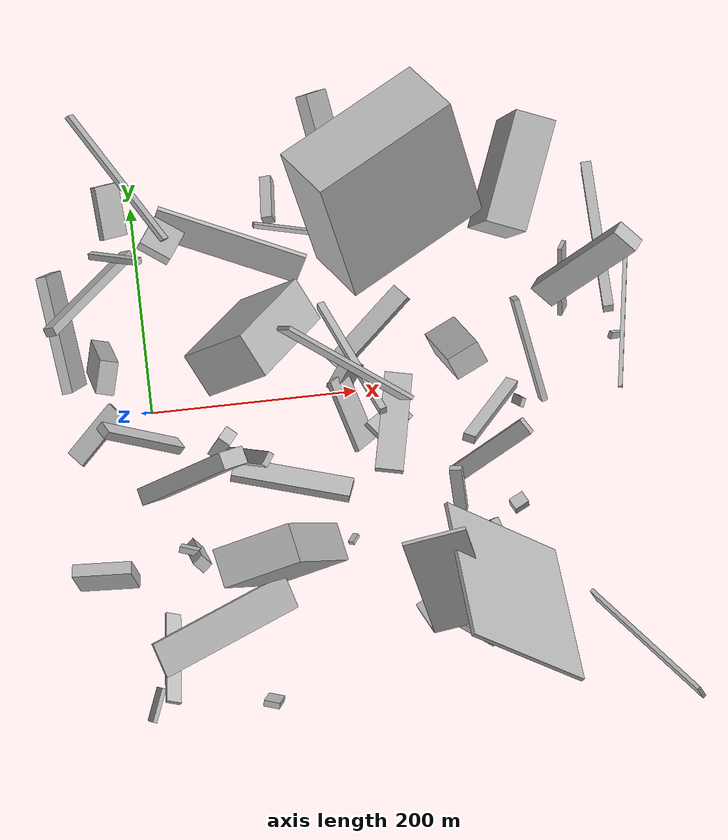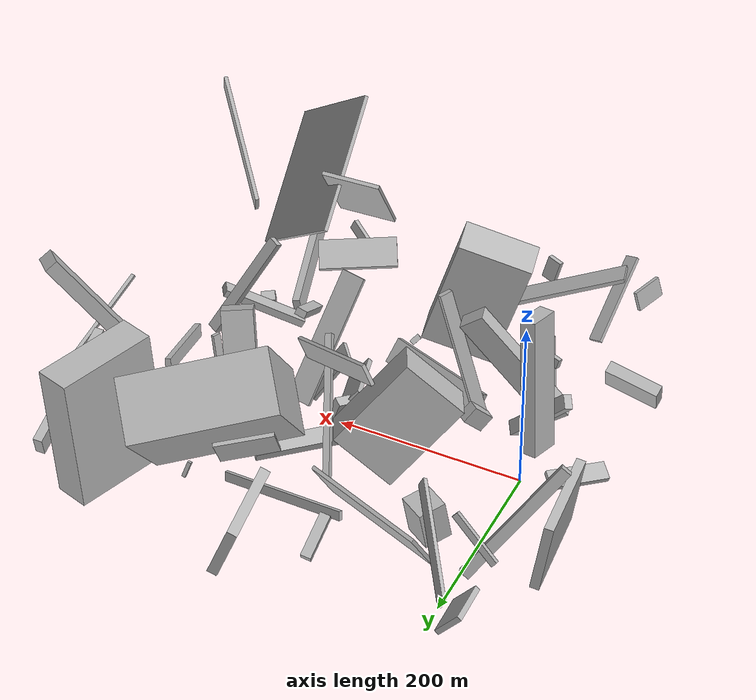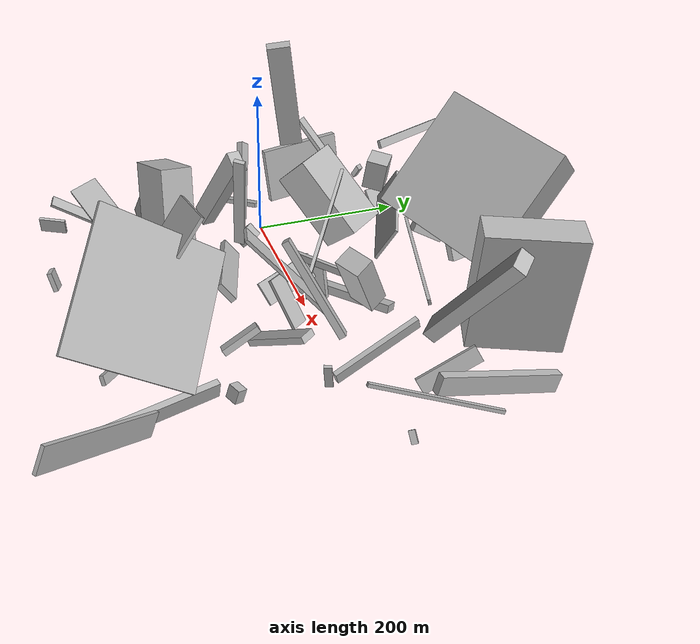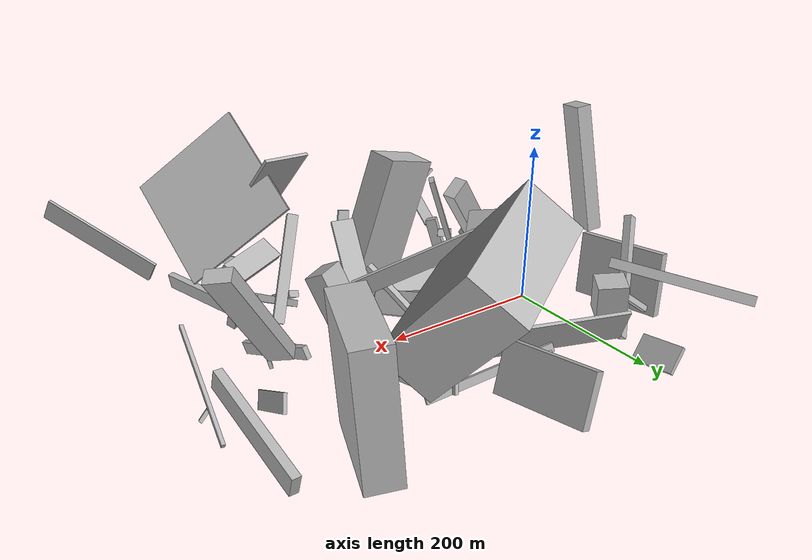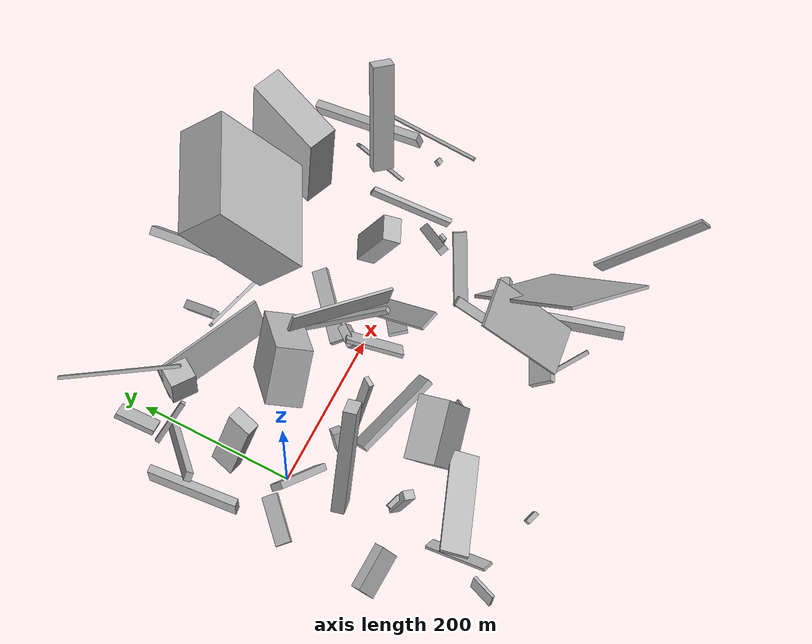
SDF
<sdf version="1.6">
 <world name="default">
  <scene>
   <sky><clouds><speed>12</speed></clouds></sky>
   <ambient>0.4 0.4 0.4 1</ambient>
   <background>0.7 0.7 0.7 1</background>
   <shadows>1</shadows>
  </scene>
  <gravity>0 0 -9.8066</gravity>
  <magnetic_field>6e-06 2.3e-05 -4.2e-05</magnetic_field>
  <physics default="0" name="default_physics" type="ode">
   <ode>
    <solver>
     <type>quick</type>
     <iters>10</iters>
     <sor>1.0</sor>
     <use_dynamic_moi_rescaling>0</use_dynamic_moi_rescaling>
    </solver>
    <constraints>
     <cfm>0</cfm>
     <erp>0.2</erp>
     <contact_max_correcting_vel>100</contact_max_correcting_vel>
     <contact_surface_layer>0.001</contact_surface_layer>
    </constraints>
   </ode>
   <max_step_size>0.004</max_step_size>
   <real_time_factor>1</real_time_factor>
   <real_time_update_rate>250</real_time_update_rate>
  </physics>
  <light name="sun" type="directional">
   <pose>0 0 10 0 0 0</pose>
   <diffuse>0.8 0.8 0.8 1</diffuse>
   <specular>0.2 0.2 0.2 1</specular>
   <attenuation>
    <range>1000</range>
    <constant>0.9</constant>
    <linear>0.01</linear>
    <quadratic>0.001</quadratic>
   </attenuation>
   <direction>-0.5 0.1 -0.9</direction>
  </light>
  <model name="building_1">
   <static>0</static>
   <pose>-83.07847115326871 143.41087112380222 52.38383557025749 -2.114255083473876 -1.4173817738530408 -2.4872902641877346</pose>
   <link name="link">
    <gravity>0</gravity>
    <pose>0 0 57.0 0 0 0</pose>
    <collision name="collision"><geometry><box><size>78 10 114</size></box></geometry></collision>
    <visual name="visual">
     <cast_shadows>0</cast_shadows>
     <geometry><box><size>78 10 114</size></box></geometry>
     <material>
      <script>
       <uri>model://HANNAS_wall/materials/scripts</uri>
       <uri>model://HANNAS_wall/materials/textures</uri>
       <name>vrc/HANNAS_wall</name>
      </script>
     </material>
    </visual>
   </link>
  </model>
  <model name="building_2">
   <static>0</static>
   <pose>116.72776716033388 -184.33654837693194 51.30159437739696 0.6838988688087241 -1.1435265032820308 -0.3545115533416793</pose>
   <link name="link">
    <gravity>0</gravity>
    <pose>0 0 74.0 0 0 0</pose>
    <collision name="collision"><geometry><box><size>4 36 148</size></box></geometry></collision>
    <visual name="visual">
     <cast_shadows>0</cast_shadows>
     <geometry><box><size>4 36 148</size></box></geometry>
     <material>
      <script>
       <uri>model://HANNAS_wall/materials/scripts</uri>
       <uri>model://HANNAS_wall/materials/textures</uri>
       <name>vrc/HANNAS_wall</name>
      </script>
     </material>
    </visual>
   </link>
  </model>
  <model name="building_3">
   <static>0</static>
   <pose>-31.577652490688777 197.83085014832605 19.773399319323687 2.4161889935136487 -0.11785253429410082 1.6352583415353816</pose>
   <link name="link">
    <gravity>0</gravity>
    <pose>0 0 16.5 0 0 0</pose>
    <collision name="collision"><geometry><box><size>52 6 33</size></box></geometry></collision>
    <visual name="visual">
     <cast_shadows>0</cast_shadows>
     <geometry><box><size>52 6 33</size></box></geometry>
     <material>
      <script>
       <uri>model://HANNAS_wall/materials/scripts</uri>
       <uri>model://HANNAS_wall/materials/textures</uri>
       <name>vrc/HANNAS_wall</name>
      </script>
     </material>
    </visual>
   </link>
  </model>
  <model name="building_4">
   <static>0</static>
   <pose>387.1946895015832 181.39178834774978 99.9140983493275 1.4825001589565014 -0.028094195410128406 -1.9435138376639836</pose>
   <link name="link">
    <gravity>0</gravity>
    <pose>0 0 19.5 0 0 0</pose>
    <collision name="collision"><geometry><box><size>108 150 39</size></box></geometry></collision>
    <visual name="visual">
     <cast_shadows>0</cast_shadows>
     <geometry><box><size>108 150 39</size></box></geometry>
     <material>
      <script>
       <uri>model://HANNAS_wall/materials/scripts</uri>
       <uri>model://HANNAS_wall/materials/textures</uri>
       <name>vrc/HANNAS_wall</name>
      </script>
     </material>
    </visual>
   </link>
  </model>
  <model name="building_5">
   <static>0</static>
   <pose>91.32785346842695 -287.70231477214145 15.296098222878511 0.13880244666863845 0.2546334144054404 -1.8357182162432324</pose>
   <link name="link">
    <gravity>0</gravity>
    <pose>0 0 12.5 0 0 0</pose>
    <collision name="collision"><geometry><box><size>6 16 25</size></box></geometry></collision>
    <visual name="visual">
     <cast_shadows>0</cast_shadows>
     <geometry><box><size>6 16 25</size></box></geometry>
     <material>
      <script>
       <uri>model://HANNAS_wall/materials/scripts</uri>
       <uri>model://HANNAS_wall/materials/textures</uri>
       <name>vrc/HANNAS_wall</name>
      </script>
     </material>
    </visual>
   </link>
  </model>
  <model name="building_6">
   <static>0</static>
   <pose>341.5690853090971 -209.71210035859409 15.899608294632095 -3.1276180593199303 -0.1887443472193195 -2.8619207988750635</pose>
   <link name="link">
    <gravity>0</gravity>
    <pose>0 0 10.0 0 0 0</pose>
    <collision name="collision"><geometry><box><size>8 150 20</size></box></geometry></collision>
    <visual name="visual">
     <cast_shadows>0</cast_shadows>
     <geometry><box><size>8 150 20</size></box></geometry>
     <material>
      <script>
       <uri>model://HANNAS_wall/materials/scripts</uri>
       <uri>model://HANNAS_wall/materials/textures</uri>
       <name>vrc/HANNAS_wall</name>
      </script>
     </material>
    </visual>
   </link>
  </model>
  <model name="building_7">
   <static>0</static>
   <pose>389.7377591665187 74.58956361570817 85.25559678686709 -0.5932835475205104 0.1957983856076311 -0.8070485743669514</pose>
   <link name="link">
    <gravity>0</gravity>
    <pose>0 0 75.0 0 0 0</pose>
    <collision name="collision"><geometry><box><size>27 15 150</size></box></geometry></collision>
    <visual name="visual">
     <cast_shadows>0</cast_shadows>
     <geometry><box><size>27 15 150</size></box></geometry>
     <material>
      <script>
       <uri>model://HANNAS_wall/materials/scripts</uri>
       <uri>model://HANNAS_wall/materials/textures</uri>
       <name>vrc/HANNAS_wall</name>
      </script>
     </material>
    </visual>
   </link>
  </model>
  <model name="building_8">
   <static>0</static>
   <pose>-60.850355260940034 -158.36019040488426 32.42910751886953 2.7456855410425804 -1.084991399919161 1.8844121001467704</pose>
   <link name="link">
    <gravity>0</gravity>
    <pose>0 0 6.5 0 0 0</pose>
    <collision name="collision"><geometry><box><size>36 59 13</size></box></geometry></collision>
    <visual name="visual">
     <cast_shadows>0</cast_shadows>
     <geometry><box><size>36 59 13</size></box></geometry>
     <material>
      <script>
       <uri>model://HANNAS_wall/materials/scripts</uri>
       <uri>model://HANNAS_wall/materials/textures</uri>
       <name>vrc/HANNAS_wall</name>
      </script>
     </material>
    </visual>
   </link>
  </model>
  <model name="building_9">
   <static>0</static>
   <pose>182.9906986880963 4.4309113165911205 26.541622571982224 0.8678480272280753 -1.2477100017543639 -3.08293734150729</pose>
   <link name="link">
    <gravity>0</gravity>
    <pose>0 0 14.0 0 0 0</pose>
    <collision name="collision"><geometry><box><size>45 11 28</size></box></geometry></collision>
    <visual name="visual">
     <cast_shadows>0</cast_shadows>
     <geometry><box><size>45 11 28</size></box></geometry>
     <material>
      <script>
       <uri>model://HANNAS_wall/materials/scripts</uri>
       <uri>model://HANNAS_wall/materials/textures</uri>
       <name>vrc/HANNAS_wall</name>
      </script>
     </material>
    </visual>
   </link>
  </model>
  <model name="building_10">
   <static>0</static>
   <pose>229.84471570410423 -30.62904020249359 35.20471996539332 -3.0143645645565416 -0.9600759785135105 -2.572263562535072</pose>
   <link name="link">
    <gravity>0</gravity>
    <pose>0 0 2.0 0 0 0</pose>
    <collision name="collision"><geometry><box><size>64 24 4</size></box></geometry></collision>
    <visual name="visual">
     <cast_shadows>0</cast_shadows>
     <geometry><box><size>64 24 4</size></box></geometry>
     <material>
      <script>
       <uri>model://HANNAS_wall/materials/scripts</uri>
       <uri>model://HANNAS_wall/materials/textures</uri>
       <name>vrc/HANNAS_wall</name>
      </script>
     </material>
    </visual>
   </link>
  </model>
  <model name="building_11">
   <static>0</static>
   <pose>257.3647350571053 144.71845965800506 104.15716539191511 0.6767989859462404 -0.2245866537394409 -2.6413568339688416</pose>
   <link name="link">
    <gravity>0</gravity>
    <pose>0 0 75.0 0 0 0</pose>
    <collision name="collision"><geometry><box><size>150 67 150</size></box></geometry></collision>
    <visual name="visual">
     <cast_shadows>0</cast_shadows>
     <geometry><box><size>150 67 150</size></box></geometry>
     <material>
      <script>
       <uri>model://HANNAS_wall/materials/scripts</uri>
       <uri>model://HANNAS_wall/materials/textures</uri>
       <name>vrc/HANNAS_wall</name>
      </script>
     </material>
    </visual>
   </link>
  </model>
  <model name="building_12">
   <static>0</static>
   <pose>195.81964971182083 31.825672015567857 50.51821245440404 -1.8939578305500482 -0.650535654249189 -1.1436515034317756</pose>
   <link name="link">
    <gravity>0</gravity>
    <pose>0 0 3.5 0 0 0</pose>
    <collision name="collision"><geometry><box><size>150 8 7</size></box></geometry></collision>
    <visual name="visual">
     <cast_shadows>0</cast_shadows>
     <geometry><box><size>150 8 7</size></box></geometry>
     <material>
      <script>
       <uri>model://HANNAS_wall/materials/scripts</uri>
       <uri>model://HANNAS_wall/materials/textures</uri>
       <name>vrc/HANNAS_wall</name>
      </script>
     </material>
    </visual>
   </link>
  </model>
  <model name="building_13">
   <static>0</static>
   <pose>205.1624588670295 241.08563924490318 42.32813140823525 -0.3612932773965315 -0.0898731761771596 1.7273034271115053</pose>
   <link name="link">
    <gravity>0</gravity>
    <pose>0 0 28.5 0 0 0</pose>
    <collision name="collision"><geometry><box><size>105 11 57</size></box></geometry></collision>
    <visual name="visual">
     <cast_shadows>0</cast_shadows>
     <geometry><box><size>105 11 57</size></box></geometry>
     <material>
      <script>
       <uri>model://HANNAS_wall/materials/scripts</uri>
       <uri>model://HANNAS_wall/materials/textures</uri>
       <name>vrc/HANNAS_wall</name>
      </script>
     </material>
    </visual>
   </link>
  </model>
  <model name="building_14">
   <static>0</static>
   <pose>349.37354328464045 -8.134983589170915 66.43580024783812 -0.2855067679452495 -0.5455224310348651 1.2913888359808647</pose>
   <link name="link">
    <gravity>0</gravity>
    <pose>0 0 59.5 0 0 0</pose>
    <collision name="collision"><geometry><box><size>8 12 119</size></box></geometry></collision>
    <visual name="visual">
     <cast_shadows>0</cast_shadows>
     <geometry><box><size>8 12 119</size></box></geometry>
     <material>
      <script>
       <uri>model://HANNAS_wall/materials/scripts</uri>
       <uri>model://HANNAS_wall/materials/textures</uri>
       <name>vrc/HANNAS_wall</name>
      </script>
     </material>
    </visual>
   </link>
  </model>
  <model name="building_15">
   <static>0</static>
   <pose>33.433047756174865 -55.72221776870691 89.533724295891 1.4845831650952581 -0.9191185708156902 0.30646156347277237</pose>
   <link name="link">
    <gravity>0</gravity>
    <pose>0 0 8.5 0 0 0</pose>
    <collision name="collision"><geometry><box><size>150 28 17</size></box></geometry></collision>
    <visual name="visual">
     <cast_shadows>0</cast_shadows>
     <geometry><box><size>150 28 17</size></box></geometry>
     <material>
      <script>
       <uri>model://HANNAS_wall/materials/scripts</uri>
       <uri>model://HANNAS_wall/materials/textures</uri>
       <name>vrc/HANNAS_wall</name>
      </script>
     </material>
    </visual>
   </link>
  </model>
  <model name="building_16">
   <static>0</static>
   <pose>-3.2338492034542106 -237.83210784044007 58.241352103319244 -0.3986113634803213 -0.5867831242697518 -1.640988356231739</pose>
   <link name="link">
    <gravity>0</gravity>
    <pose>0 0 2.0 0 0 0</pose>
    <collision name="collision"><geometry><box><size>98 15 4</size></box></geometry></collision>
    <visual name="visual">
     <cast_shadows>0</cast_shadows>
     <geometry><box><size>98 15 4</size></box></geometry>
     <material>
      <script>
       <uri>model://HANNAS_wall/materials/scripts</uri>
       <uri>model://HANNAS_wall/materials/textures</uri>
       <name>vrc/HANNAS_wall</name>
      </script>
     </material>
    </visual>
   </link>
  </model>
  <model name="building_17">
   <static>0</static>
   <pose>108.92471195204192 -129.41946543537586 91.60930605983606 1.4481886255222276 -0.2753948906500885 0.2354561392490319</pose>
   <link name="link">
    <gravity>0</gravity>
    <pose>0 0 19.0 0 0 0</pose>
    <collision name="collision"><geometry><box><size>79 150 38</size></box></geometry></collision>
    <visual name="visual">
     <cast_shadows>0</cast_shadows>
     <geometry><box><size>79 150 38</size></box></geometry>
     <material>
      <script>
       <uri>model://HANNAS_wall/materials/scripts</uri>
       <uri>model://HANNAS_wall/materials/textures</uri>
       <name>vrc/HANNAS_wall</name>
      </script>
     </material>
    </visual>
   </link>
  </model>
  <model name="building_18">
   <static>0</static>
   <pose>444.92741951397863 193.8931888360926 30.7579818874827 -0.10400926726940074 -1.31683782474504 1.7108801793325625</pose>
   <link name="link">
    <gravity>0</gravity>
    <pose>0 0 73.0 0 0 0</pose>
    <collision name="collision"><geometry><box><size>22 10 146</size></box></geometry></collision>
    <visual name="visual">
     <cast_shadows>0</cast_shadows>
     <geometry><box><size>22 10 146</size></box></geometry>
     <material>
      <script>
       <uri>model://HANNAS_wall/materials/scripts</uri>
       <uri>model://HANNAS_wall/materials/textures</uri>
       <name>vrc/HANNAS_wall</name>
      </script>
     </material>
    </visual>
   </link>
  </model>
  <model name="building_19">
   <static>0</static>
   <pose>84.05342356963095 -56.73502135526419 95.02581137790737 1.7103703502749072 -0.2937467206914882 2.5133521422162475</pose>
   <link name="link">
    <gravity>0</gravity>
    <pose>0 0 7.0 0 0 0</pose>
    <collision name="collision"><geometry><box><size>6 150 14</size></box></geometry></collision>
    <visual name="visual">
     <cast_shadows>0</cast_shadows>
     <geometry><box><size>6 150 14</size></box></geometry>
     <material>
      <script>
       <uri>model://HANNAS_wall/materials/scripts</uri>
       <uri>model://HANNAS_wall/materials/textures</uri>
       <name>vrc/HANNAS_wall</name>
      </script>
     </material>
    </visual>
   </link>
  </model>
  <model name="building_20">
   <static>0</static>
   <pose>98.34255600012384 164.29803626456498 69.67732694977079 2.6361137052489574 0.06709172335945862 -0.41836484459909895</pose>
   <link name="link">
    <gravity>0</gravity>
    <pose>0 0 25.5 0 0 0</pose>
    <collision name="collision"><geometry><box><size>150 4 51</size></box></geometry></collision>
    <visual name="visual">
     <cast_shadows>0</cast_shadows>
     <geometry><box><size>150 4 51</size></box></geometry>
     <material>
      <script>
       <uri>model://HANNAS_wall/materials/scripts</uri>
       <uri>model://HANNAS_wall/materials/textures</uri>
       <name>vrc/HANNAS_wall</name>
      </script>
     </material>
    </visual>
   </link>
  </model>
  <model name="building_21">
   <static>0</static>
   <pose>322.9201481005165 -143.98508153129202 97.19013638063637 0.8221772165966844 -0.535250446650598 0.5336860386753836</pose>
   <link name="link">
    <gravity>0</gravity>
    <pose>0 0 75.0 0 0 0</pose>
    <collision name="collision"><geometry><box><size>4 150 150</size></box></geometry></collision>
    <visual name="visual">
     <cast_shadows>0</cast_shadows>
     <geometry><box><size>4 150 150</size></box></geometry>
     <material>
      <script>
       <uri>model://HANNAS_wall/materials/scripts</uri>
       <uri>model://HANNAS_wall/materials/textures</uri>
       <name>vrc/HANNAS_wall</name>
      </script>
     </material>
    </visual>
   </link>
  </model>
  <model name="building_22">
   <static>0</static>
   <pose>-49.06115138288593 -22.368051077240025 19.188371935101856 -2.858834160635231 1.23995362016525 -0.5308246975095295</pose>
   <link name="link">
    <gravity>0</gravity>
    <pose>0 0 10.0 0 0 0</pose>
    <collision name="collision"><geometry><box><size>6 63 20</size></box></geometry></collision>
    <visual name="visual">
     <cast_shadows>0</cast_shadows>
     <geometry><box><size>6 63 20</size></box></geometry>
     <material>
      <script>
       <uri>model://HANNAS_wall/materials/scripts</uri>
       <uri>model://HANNAS_wall/materials/textures</uri>
       <name>vrc/HANNAS_wall</name>
      </script>
     </material>
    </visual>
   </link>
  </model>
  <model name="building_23">
   <static>0</static>
   <pose>407.37459761845525 -219.4392624993439 56.53201095302785 -1.0860361634717774 -0.07785249552274025 -2.4620928825404165</pose>
   <link name="link">
    <gravity>0</gravity>
    <pose>0 0 75.0 0 0 0</pose>
    <collision name="collision"><geometry><box><size>4 26 150</size></box></geometry></collision>
    <visual name="visual">
     <cast_shadows>0</cast_shadows>
     <geometry><box><size>4 26 150</size></box></geometry>
     <material>
      <script>
       <uri>model://HANNAS_wall/materials/scripts</uri>
       <uri>model://HANNAS_wall/materials/textures</uri>
       <name>vrc/HANNAS_wall</name>
      </script>
     </material>
    </visual>
   </link>
  </model>
  <model name="building_24">
   <static>0</static>
   <pose>354.2536350689708 -30.092008001322284 21.31823451203835 -1.5074422100862963 0.2382671697213337 -0.38676047845184464</pose>
   <link name="link">
    <gravity>0</gravity>
    <pose>0 0 4.5 0 0 0</pose>
    <collision name="collision"><geometry><box><size>4 34 9</size></box></geometry></collision>
    <visual name="visual">
     <cast_shadows>0</cast_shadows>
     <geometry><box><size>4 34 9</size></box></geometry>
     <material>
      <script>
       <uri>model://HANNAS_wall/materials/scripts</uri>
       <uri>model://HANNAS_wall/materials/textures</uri>
       <name>vrc/HANNAS_wall</name>
      </script>
     </material>
    </visual>
   </link>
  </model>
  <model name="building_25">
   <static>0</static>
   <pose>26.4569511005099 161.35456053270934 59.06737927995448 0.15197693509588067 -0.07110466001518267 2.531465714074743</pose>
   <link name="link">
    <gravity>0</gravity>
    <pose>0 0 21.0 0 0 0</pose>
    <collision name="collision"><geometry><box><size>33 29 42</size></box></geometry></collision>
    <visual name="visual">
     <cast_shadows>0</cast_shadows>
     <geometry><box><size>33 29 42</size></box></geometry>
     <material>
      <script>
       <uri>model://HANNAS_wall/materials/scripts</uri>
       <uri>model://HANNAS_wall/materials/textures</uri>
       <name>vrc/HANNAS_wall</name>
      </script>
     </material>
    </visual>
   </link>
  </model>
  <model name="building_26">
   <static>0</static>
   <pose>-49.989451070725494 120.63494199509536 63.00023023300358 -0.5522054165633766 -0.825915002320212 -2.3922252490460414</pose>
   <link name="link">
    <gravity>0</gravity>
    <pose>0 0 6.0 0 0 0</pose>
    <collision name="collision"><geometry><box><size>150 9 12</size></box></geometry></collision>
    <visual name="visual">
     <cast_shadows>0</cast_shadows>
     <geometry><box><size>150 9 12</size></box></geometry>
     <material>
      <script>
       <uri>model://HANNAS_wall/materials/scripts</uri>
       <uri>model://HANNAS_wall/materials/textures</uri>
       <name>vrc/HANNAS_wall</name>
      </script>
     </material>
    </visual>
   </link>
  </model>
  <model name="building_27">
   <static>0</static>
   <pose>379.0588631796877 -26.972878659106406 38.27407634967882 -0.3936259544540161 -1.193788446732482 -0.9648972891344627</pose>
   <link name="link">
    <gravity>0</gravity>
    <pose>0 0 53.5 0 0 0</pose>
    <collision name="collision"><geometry><box><size>14 6 107</size></box></geometry></collision>
    <visual name="visual">
     <cast_shadows>0</cast_shadows>
     <geometry><box><size>14 6 107</size></box></geometry>
     <material>
      <script>
       <uri>model://HANNAS_wall/materials/scripts</uri>
       <uri>model://HANNAS_wall/materials/textures</uri>
       <name>vrc/HANNAS_wall</name>
      </script>
     </material>
    </visual>
   </link>
  </model>
  <model name="building_28">
   <static>0</static>
   <pose>35.57887832942586 -146.80207267493913 34.834623120457564 1.2536904365517967 0.06189239042605921 -2.4263601669525925</pose>
   <link name="link">
    <gravity>0</gravity>
    <pose>0 0 7.0 0 0 0</pose>
    <collision name="collision"><geometry><box><size>12 57 14</size></box></geometry></collision>
    <visual name="visual">
     <cast_shadows>0</cast_shadows>
     <geometry><box><size>12 57 14</size></box></geometry>
     <material>
      <script>
       <uri>model://HANNAS_wall/materials/scripts</uri>
       <uri>model://HANNAS_wall/materials/textures</uri>
       <name>vrc/HANNAS_wall</name>
      </script>
     </material>
    </visual>
   </link>
  </model>
  <model name="building_29">
   <static>0</static>
   <pose>15.067538941882214 -132.42241450583344 45.259537208663744 -1.4708210244154516 0.3041449573412897 -1.859641773270921</pose>
   <link name="link">
    <gravity>0</gravity>
    <pose>0 0 9.5 0 0 0</pose>
    <collision name="collision"><geometry><box><size>6 10 19</size></box></geometry></collision>
    <visual name="visual">
     <cast_shadows>0</cast_shadows>
     <geometry><box><size>6 10 19</size></box></geometry>
     <material>
      <script>
       <uri>model://HANNAS_wall/materials/scripts</uri>
       <uri>model://HANNAS_wall/materials/textures</uri>
       <name>vrc/HANNAS_wall</name>
      </script>
     </material>
    </visual>
   </link>
  </model>
  <model name="building_30">
   <static>0</static>
   <pose>-6.32559939907944 -28.242718689710372 78.68406612340425 2.209812149966847 0.3448663451294073 -2.3339665099895206</pose>
   <link name="link">
    <gravity>0</gravity>
    <pose>0 0 7.5 0 0 0</pose>
    <collision name="collision"><geometry><box><size>9 107 15</size></box></geometry></collision>
    <visual name="visual">
     <cast_shadows>0</cast_shadows>
     <geometry><box><size>9 107 15</size></box></geometry>
     <material>
      <script>
       <uri>model://HANNAS_wall/materials/scripts</uri>
       <uri>model://HANNAS_wall/materials/textures</uri>
       <name>vrc/HANNAS_wall</name>
      </script>
     </material>
    </visual>
   </link>
  </model>
  <model name="building_31">
   <static>0</static>
   <pose>286.76970179835473 -244.34306780004113 29.98421597300536 0.6348904123391879 -1.1614463332417757 -2.781683969125124</pose>
   <link name="link">
    <gravity>0</gravity>
    <pose>0 0 2.5 0 0 0</pose>
    <collision name="collision"><geometry><box><size>11 52 5</size></box></geometry></collision>
    <visual name="visual">
     <cast_shadows>0</cast_shadows>
     <geometry><box><size>11 52 5</size></box></geometry>
     <material>
      <script>
       <uri>model://HANNAS_wall/materials/scripts</uri>
       <uri>model://HANNAS_wall/materials/textures</uri>
       <name>vrc/HANNAS_wall</name>
      </script>
     </material>
    </visual>
   </link>
  </model>
  <model name="building_32">
   <static>0</static>
   <pose>454.74935505780763 24.792036860531706 9.548059435025644 0.9995376134713979 -0.8159542646590501 -3.1097006230272193</pose>
   <link name="link">
    <gravity>0</gravity>
    <pose>0 0 3.5 0 0 0</pose>
    <collision name="collision"><geometry><box><size>14 4 7</size></box></geometry></collision>
    <visual name="visual">
     <cast_shadows>0</cast_shadows>
     <geometry><box><size>14 4 7</size></box></geometry>
     <material>
      <script>
       <uri>model://HANNAS_wall/materials/scripts</uri>
       <uri>model://HANNAS_wall/materials/textures</uri>
       <name>vrc/HANNAS_wall</name>
      </script>
     </material>
    </visual>
   </link>
  </model>
  <model name="building_33">
   <static>0</static>
   <pose>-16.920760211646098 148.95917433244463 57.93647293321814 -1.0319877512939721 0.7943621650704008 0.4486382366203949</pose>
   <link name="link">
    <gravity>0</gravity>
    <pose>0 0 3.0 0 0 0</pose>
    <collision name="collision"><geometry><box><size>7 62 6</size></box></geometry></collision>
    <visual name="visual">
     <cast_shadows>0</cast_shadows>
     <geometry><box><size>7 62 6</size></box></geometry>
     <material>
      <script>
       <uri>model://HANNAS_wall/materials/scripts</uri>
       <uri>model://HANNAS_wall/materials/textures</uri>
       <name>vrc/HANNAS_wall</name>
      </script>
     </material>
    </visual>
   </link>
  </model>
  <model name="building_34">
   <static>0</static>
   <pose>79.6453266832375 54.76735090096162 71.74281094684797 -0.3659596105644369 -0.8010019705153456 -2.420012738469425</pose>
   <link name="link">
    <gravity>0</gravity>
    <pose>0 0 38.0 0 0 0</pose>
    <collision name="collision"><geometry><box><size>108 46 76</size></box></geometry></collision>
    <visual name="visual">
     <cast_shadows>0</cast_shadows>
     <geometry><box><size>108 46 76</size></box></geometry>
     <material>
      <script>
       <uri>model://HANNAS_wall/materials/scripts</uri>
       <uri>model://HANNAS_wall/materials/textures</uri>
       <name>vrc/HANNAS_wall</name>
      </script>
     </material>
    </visual>
   </link>
  </model>
  <model name="building_35">
   <static>0</static>
   <pose>-5.4275772995719755 224.30829904168604 114.21174979207849 -0.23879883964189777 1.123777905376892 0.33663115738277144</pose>
   <link name="link">
    <gravity>0</gravity>
    <pose>0 0 2.0 0 0 0</pose>
    <collision name="collision"><geometry><box><size>11 150 4</size></box></geometry></collision>
    <visual name="visual">
     <cast_shadows>0</cast_shadows>
     <geometry><box><size>11 150 4</size></box></geometry>
     <material>
      <script>
       <uri>model://HANNAS_wall/materials/scripts</uri>
       <uri>model://HANNAS_wall/materials/textures</uri>
       <name>vrc/HANNAS_wall</name>
      </script>
     </material>
    </visual>
   </link>
  </model>
  <model name="building_36">
   <static>0</static>
   <pose>465.20274350262196 45.69101864827593 62.86608655400636 1.676928607706483 -0.35687606251895543 -1.7385148212885255</pose>
   <link name="link">
    <gravity>0</gravity>
    <pose>0 0 2.0 0 0 0</pose>
    <collision name="collision"><geometry><box><size>150 4 4</size></box></geometry></collision>
    <visual name="visual">
     <cast_shadows>0</cast_shadows>
     <geometry><box><size>150 4 4</size></box></geometry>
     <material>
      <script>
       <uri>model://HANNAS_wall/materials/scripts</uri>
       <uri>model://HANNAS_wall/materials/textures</uri>
       <name>vrc/HANNAS_wall</name>
      </script>
     </material>
    </visual>
   </link>
  </model>
  <model name="building_37">
   <static>0</static>
   <pose>203.32113046856585 -52.99975508657192 30.643233846994715 -1.2470912720710339 -0.6736330298833654 0.07916642180563697</pose>
   <link name="link">
    <gravity>0</gravity>
    <pose>0 0 37.0 0 0 0</pose>
    <collision name="collision"><geometry><box><size>5 30 74</size></box></geometry></collision>
    <visual name="visual">
     <cast_shadows>0</cast_shadows>
     <geometry><box><size>5 30 74</size></box></geometry>
     <material>
      <script>
       <uri>model://HANNAS_wall/materials/scripts</uri>
       <uri>model://HANNAS_wall/materials/textures</uri>
       <name>vrc/HANNAS_wall</name>
      </script>
     </material>
    </visual>
   </link>
  </model>
  <model name="building_38">
   <static>0</static>
   <pose>-40.455532670436455 58.57893526325677 109.77116797781605 0.13972104213372816 -0.12084655683740617 1.3166322457171642</pose>
   <link name="link">
    <gravity>0</gravity>
    <pose>0 0 75.0 0 0 0</pose>
    <collision name="collision"><geometry><box><size>31 17 150</size></box></geometry></collision>
    <visual name="visual">
     <cast_shadows>0</cast_shadows>
     <geometry><box><size>31 17 150</size></box></geometry>
     <material>
      <script>
       <uri>model://HANNAS_wall/materials/scripts</uri>
       <uri>model://HANNAS_wall/materials/textures</uri>
       <name>vrc/HANNAS_wall</name>
      </script>
     </material>
    </visual>
   </link>
  </model>
  <model name="building_39">
   <static>0</static>
   <pose>238.97892741026044 -191.9341470939671 135.35963517189364 1.445103564704661 -0.8999988675919266 1.8143176005153563</pose>
   <link name="link">
    <gravity>0</gravity>
    <pose>0 0 30.5 0 0 0</pose>
    <collision name="collision"><geometry><box><size>150 4 61</size></box></geometry></collision>
    <visual name="visual">
     <cast_shadows>0</cast_shadows>
     <geometry><box><size>150 4 61</size></box></geometry>
     <material>
      <script>
       <uri>model://HANNAS_wall/materials/scripts</uri>
       <uri>model://HANNAS_wall/materials/textures</uri>
       <name>vrc/HANNAS_wall</name>
      </script>
     </material>
    </visual>
   </link>
  </model>
  <model name="building_40">
   <static>0</static>
   <pose>185.36938112289056 -95.07331858278675 29.79250608722349 1.6928155254357484 -0.880819103378487 -1.9463675302420818</pose>
   <link name="link">
    <gravity>0</gravity>
    <pose>0 0 58.5 0 0 0</pose>
    <collision name="collision"><geometry><box><size>28 8 117</size></box></geometry></collision>
    <visual name="visual">
     <cast_shadows>0</cast_shadows>
     <geometry><box><size>28 8 117</size></box></geometry>
     <material>
      <script>
       <uri>model://HANNAS_wall/materials/scripts</uri>
       <uri>model://HANNAS_wall/materials/textures</uri>
       <name>vrc/HANNAS_wall</name>
      </script>
     </material>
    </visual>
   </link>
  </model>
  <model name="building_41">
   <static>0</static>
   <pose>281.2148390187337 -209.51470395858277 38.23744713679374 0.05802377939368526 0.6261391624740461 2.0591431557403848</pose>
   <link name="link">
    <gravity>0</gravity>
    <pose>0 0 4.5 0 0 0</pose>
    <collision name="collision"><geometry><box><size>32 84 9</size></box></geometry></collision>
    <visual name="visual">
     <cast_shadows>0</cast_shadows>
     <geometry><box><size>32 84 9</size></box></geometry>
     <material>
      <script>
       <uri>model://HANNAS_wall/materials/scripts</uri>
       <uri>model://HANNAS_wall/materials/textures</uri>
       <name>vrc/HANNAS_wall</name>
      </script>
     </material>
    </visual>
   </link>
  </model>
  <model name="building_42">
   <static>0</static>
   <pose>314.29827449636355 37.574295419641 96.34740629564337 1.4889208172088033 0.46874508904579826 -1.1661980790445732</pose>
   <link name="link">
    <gravity>0</gravity>
    <pose>0 0 16.5 0 0 0</pose>
    <collision name="collision"><geometry><box><size>24 71 33</size></box></geometry></collision>
    <visual name="visual">
     <cast_shadows>0</cast_shadows>
     <geometry><box><size>24 71 33</size></box></geometry>
     <material>
      <script>
       <uri>model://HANNAS_wall/materials/scripts</uri>
       <uri>model://HANNAS_wall/materials/textures</uri>
       <name>vrc/HANNAS_wall</name>
      </script>
     </material>
    </visual>
   </link>
  </model>
  <model name="building_43">
   <static>0</static>
   <pose>287.58975271529084 -83.90723703128924 51.24638078310367 2.7492401565649343 1.0073776016271503 1.1585382768212646</pose>
   <link name="link">
    <gravity>0</gravity>
    <pose>0 0 23.5 0 0 0</pose>
    <collision name="collision"><geometry><box><size>8 12 47</size></box></geometry></collision>
    <visual name="visual">
     <cast_shadows>0</cast_shadows>
     <geometry><box><size>8 12 47</size></box></geometry>
     <material>
      <script>
       <uri>model://HANNAS_wall/materials/scripts</uri>
       <uri>model://HANNAS_wall/materials/textures</uri>
       <name>vrc/HANNAS_wall</name>
      </script>
     </material>
    </visual>
   </link>
  </model>
  <model name="building_44">
   <static>0</static>
   <pose>412.43291334674876 91.45605605214139 35.572851934123726 -0.27554002230772323 -0.4846614911307357 1.4947634165779402</pose>
   <link name="link">
    <gravity>0</gravity>
    <pose>0 0 10.0 0 0 0</pose>
    <collision name="collision"><geometry><box><size>71 4 20</size></box></geometry></collision>
    <visual name="visual">
     <cast_shadows>0</cast_shadows>
     <geometry><box><size>71 4 20</size></box></geometry>
     <material>
      <script>
       <uri>model://HANNAS_wall/materials/scripts</uri>
       <uri>model://HANNAS_wall/materials/textures</uri>
       <name>vrc/HANNAS_wall</name>
      </script>
     </material>
    </visual>
   </link>
  </model>
  <model name="building_45">
   <static>0</static>
   <pose>129.05653391834397 193.08656365480311 33.97479544815421 1.1960942903020721 -0.9986808746951166 1.95361483466933</pose>
   <link name="link">
    <gravity>0</gravity>
    <pose>0 0 5.5 0 0 0</pose>
    <collision name="collision"><geometry><box><size>12 47 11</size></box></geometry></collision>
    <visual name="visual">
     <cast_shadows>0</cast_shadows>
     <geometry><box><size>12 47 11</size></box></geometry>
     <material>
      <script>
       <uri>model://HANNAS_wall/materials/scripts</uri>
       <uri>model://HANNAS_wall/materials/textures</uri>
       <name>vrc/HANNAS_wall</name>
      </script>
     </material>
    </visual>
   </link>
  </model>
  <model name="building_46">
   <static>0</static>
   <pose>61.06382441524711 -32.53292139560066 32.075966342160186 1.616053040092297 -0.7946008847655154 0.8303837820337198</pose>
   <link name="link">
    <gravity>0</gravity>
    <pose>0 0 6.5 0 0 0</pose>
    <collision name="collision"><geometry><box><size>27 19 13</size></box></geometry></collision>
    <visual name="visual">
     <cast_shadows>0</cast_shadows>
     <geometry><box><size>27 19 13</size></box></geometry>
     <material>
      <script>
       <uri>model://HANNAS_wall/materials/scripts</uri>
       <uri>model://HANNAS_wall/materials/textures</uri>
       <name>vrc/HANNAS_wall</name>
      </script>
     </material>
    </visual>
   </link>
  </model>
  <model name="building_47">
   <static>0</static>
   <pose>343.33586125630546 -119.79740335246746 14.877484200992503 -1.2765040290594318 -0.10184480897531756 -2.6833516297984397</pose>
   <link name="link">
    <gravity>0</gravity>
    <pose>0 0 6.0 0 0 0</pose>
    <collision name="collision"><geometry><box><size>15 16 12</size></box></geometry></collision>
    <visual name="visual">
     <cast_shadows>0</cast_shadows>
     <geometry><box><size>15 16 12</size></box></geometry>
     <material>
      <script>
       <uri>model://HANNAS_wall/materials/scripts</uri>
       <uri>model://HANNAS_wall/materials/textures</uri>
       <name>vrc/HANNAS_wall</name>
      </script>
     </material>
    </visual>
   </link>
  </model>
  <model name="building_48">
   <static>0</static>
   <pose>219.76603262437402 -30.545855479977135 77.19556445865224 1.5701658704022563 -0.709066677869726 1.3592537941046081</pose>
   <link name="link">
    <gravity>0</gravity>
    <pose>0 0 13.5 0 0 0</pose>
    <collision name="collision"><geometry><box><size>4 142 27</size></box></geometry></collision>
    <visual name="visual">
     <cast_shadows>0</cast_shadows>
     <geometry><box><size>4 142 27</size></box></geometry>
     <material>
      <script>
       <uri>model://HANNAS_wall/materials/scripts</uri>
       <uri>model://HANNAS_wall/materials/textures</uri>
       <name>vrc/HANNAS_wall</name>
      </script>
     </material>
    </visual>
   </link>
  </model>
  <model name="building_49">
   <static>0</static>
   <pose>179.79911173757424 -142.5035958961696 5.97039146517869 0.8528888045987609 0.5686597929650653 0.8968752123622494</pose>
   <link name="link">
    <gravity>0</gravity>
    <pose>0 0 3.0 0 0 0</pose>
    <collision name="collision"><geometry><box><size>11 4 6</size></box></geometry></collision>
    <visual name="visual">
     <cast_shadows>0</cast_shadows>
     <geometry><box><size>11 4 6</size></box></geometry>
     <material>
      <script>
       <uri>model://HANNAS_wall/materials/scripts</uri>
       <uri>model://HANNAS_wall/materials/textures</uri>
       <name>vrc/HANNAS_wall</name>
      </script>
     </material>
    </visual>
   </link>
  </model>
  <model name="building_50">
   <static>0</static>
   <pose>319.23680629650414 -63.051258727625424 60.856753639894954 1.6925208370394065 -0.5252004418912901 0.5051447390755183</pose>
   <link name="link">
    <gravity>0</gravity>
    <pose>0 0 8.5 0 0 0</pose>
    <collision name="collision"><geometry><box><size>93 8 17</size></box></geometry></collision>
    <visual name="visual">
     <cast_shadows>0</cast_shadows>
     <geometry><box><size>93 8 17</size></box></geometry>
     <material>
      <script>
       <uri>model://HANNAS_wall/materials/scripts</uri>
       <uri>model://HANNAS_wall/materials/textures</uri>
       <name>vrc/HANNAS_wall</name>
      </script>
     </material>
    </visual>
   </link>
  </model>
  <model name="building_51">
   <static>0</static>
   <pose>219.35223075147752 57.4762032520909 10.516892524875267 -0.0006847801237762037 -0.2953442457327026 -0.8450070864590669</pose>
   <link name="link">
    <gravity>0</gravity>
    <pose>0 0 5.0 0 0 0</pose>
    <collision name="collision"><geometry><box><size>19 97 10</size></box></geometry></collision>
    <visual name="visual">
     <cast_shadows>0</cast_shadows>
     <geometry><box><size>19 97 10</size></box></geometry>
     <material>
      <script>
       <uri>model://HANNAS_wall/materials/scripts</uri>
       <uri>model://HANNAS_wall/materials/textures</uri>
       <name>vrc/HANNAS_wall</name>
      </script>
     </material>
    </visual>
   </link>
  </model>
  <model name="building_52">
   <static>0</static>
   <pose>248.01898004935978 -11.894022534300056 76.15474824416232 -0.44522351008890254 -1.0596852729298505 -0.11941151062021807</pose>
   <link name="link">
    <gravity>0</gravity>
    <pose>0 0 75.0 0 0 0</pose>
    <collision name="collision"><geometry><box><size>24 4 150</size></box></geometry></collision>
    <visual name="visual">
     <cast_shadows>0</cast_shadows>
     <geometry><box><size>24 4 150</size></box></geometry>
     <material>
      <script>
       <uri>model://HANNAS_wall/materials/scripts</uri>
       <uri>model://HANNAS_wall/materials/textures</uri>
       <name>vrc/HANNAS_wall</name>
      </script>
     </material>
    </visual>
   </link>
  </model>
  <model name="building_53">
   <static>0</static>
   <pose>275.2224787537496 200.03430825617306 64.42823760757302 -0.3834669263248878 0.24717341284027644 3.123039538249134</pose>
   <link name="link">
    <gravity>0</gravity>
    <pose>0 0 8.5 0 0 0</pose>
    <collision name="collision"><geometry><box><size>4 4 17</size></box></geometry></collision>
    <visual name="visual">
     <cast_shadows>0</cast_shadows>
     <geometry><box><size>4 4 17</size></box></geometry>
     <material>
      <script>
       <uri>model://HANNAS_wall/materials/scripts</uri>
       <uri>model://HANNAS_wall/materials/textures</uri>
       <name>vrc/HANNAS_wall</name>
      </script>
     </material>
    </visual>
   </link>
  </model>
  <model name="building_54">
   <static>0</static>
   <pose>189.66120840534234 152.21504693730847 33.06007240785749 1.2876668053239244 -0.2125436559311221 2.922276303056665</pose>
   <link name="link">
    <gravity>0</gravity>
    <pose>0 0 2.0 0 0 0</pose>
    <collision name="collision"><geometry><box><size>150 10 4</size></box></geometry></collision>
    <visual name="visual">
     <cast_shadows>0</cast_shadows>
     <geometry><box><size>150 10 4</size></box></geometry>
     <material>
      <script>
       <uri>model://HANNAS_wall/materials/scripts</uri>
       <uri>model://HANNAS_wall/materials/textures</uri>
       <name>vrc/HANNAS_wall</name>
      </script>
     </material>
    </visual>
   </link>
  </model>
  <model name="building_55">
   <static>0</static>
   <pose>232.99032603180933 209.0075089271369 120.75174837079358 -1.3338665937640606 -0.9221182410687564 1.9289152167303512</pose>
   <link name="link">
    <gravity>0</gravity>
    <pose>0 0 30.0 0 0 0</pose>
    <collision name="collision"><geometry><box><size>82 4 60</size></box></geometry></collision>
    <visual name="visual">
     <cast_shadows>0</cast_shadows>
     <geometry><box><size>82 4 60</size></box></geometry>
     <material>
      <script>
       <uri>model://HANNAS_wall/materials/scripts</uri>
       <uri>model://HANNAS_wall/materials/textures</uri>
       <name>vrc/HANNAS_wall</name>
      </script>
     </material>
    </visual>
   </link>
  </model>
  <model name="building_56">
   <static>0</static>
   <pose>-17.818922664088774 -265.3209918501677 39.4918050370884 1.2746586261485768 -1.2849833385493015 -0.08544400683420521</pose>
   <link name="link">
    <gravity>0</gravity>
    <pose>0 0 17.0 0 0 0</pose>
    <collision name="collision"><geometry><box><size>22 4 34</size></box></geometry></collision>
    <visual name="visual">
     <cast_shadows>0</cast_shadows>
     <geometry><box><size>22 4 34</size></box></geometry>
     <material>
      <script>
       <uri>model://HANNAS_wall/materials/scripts</uri>
       <uri>model://HANNAS_wall/materials/textures</uri>
       <name>vrc/HANNAS_wall</name>
      </script>
     </material>
    </visual>
   </link>
  </model>
 </world>
</sdf>
